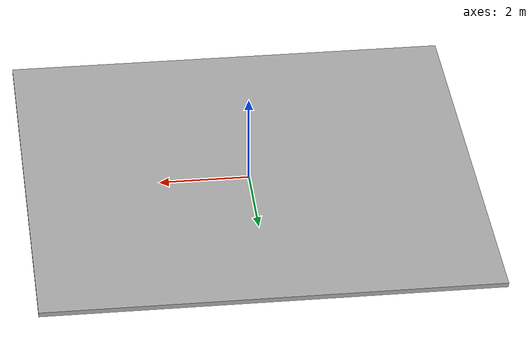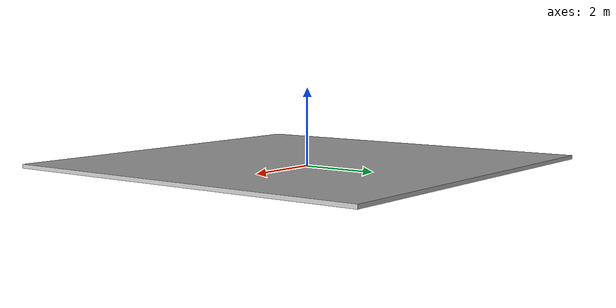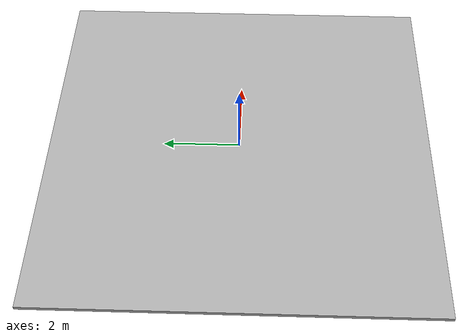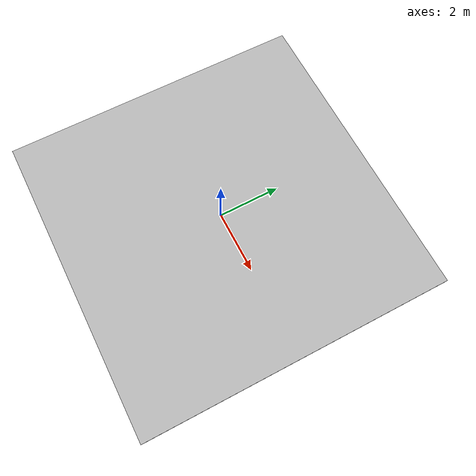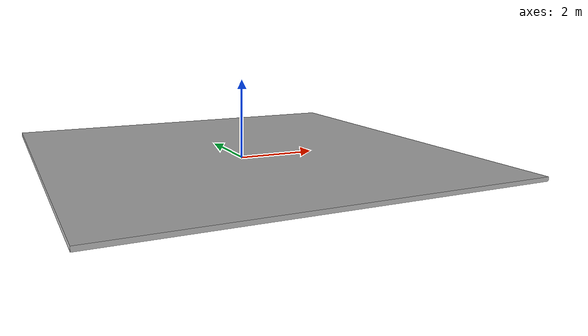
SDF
<?xml version="1.0"?>
<sdf version="1.5">
  <model name="trace">
    <link name="link">
      <pose>0 0 0.115 0 0 0</pose>
      <inertial>
        <mass>0.390</mass>
      </inertial>
      <collision name="collision">
        <geometry>
          <box>
            <size>10 10 .1</size>
          </box>
        </geometry>
      </collision>
      <visual name="visual">
        <geometry>
          <box>
            <size>10 10 .1</size>
          </box>
        </geometry>
        <material>
          <script>
            <uri>model://trace/materials/scripts</uri>
            <uri>model://trace/materials/textures</uri>
            <name>trace/Diffuse </name>          </script>
        </material>
      </visual>
    </link>
  </model>
</sdf>
